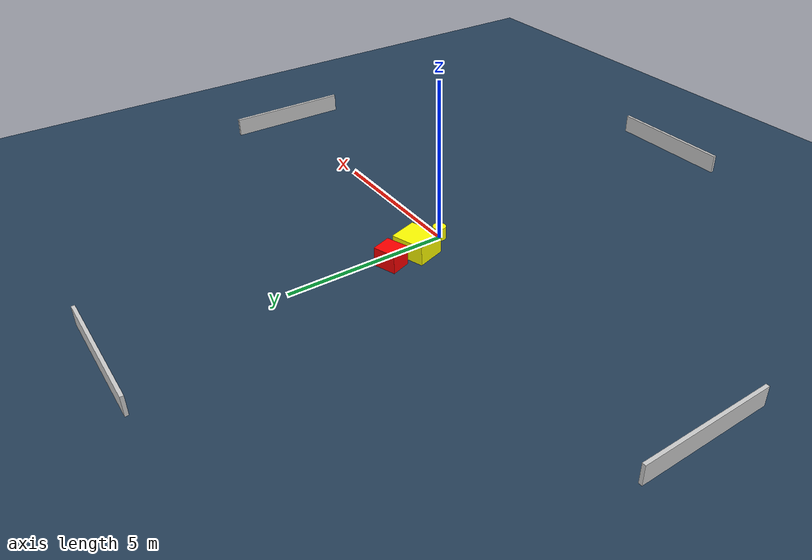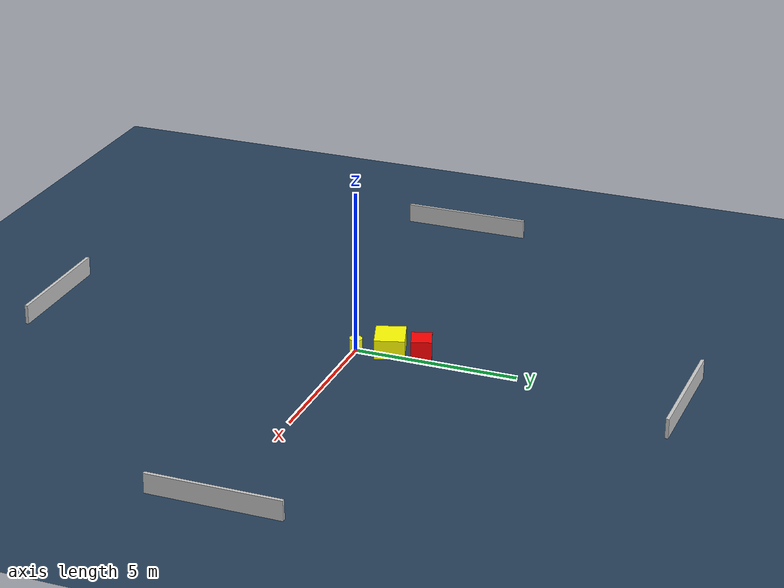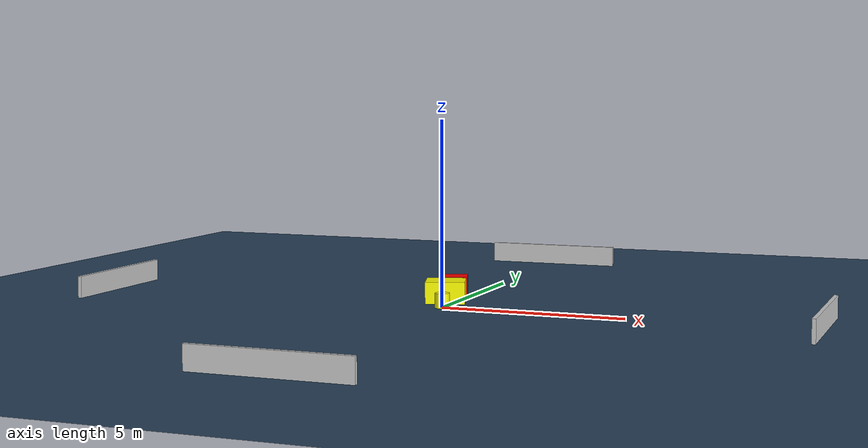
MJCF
<?xml version="1.0" ?>
<mujoco model="generated_environment">
  <option timestep="0.01" integrator="RK4" cone="elliptic"/>
  <default>
    <geom density="1"/>
  </default>
  <asset>
    <texture builtin="gradient" height="3072" name="skybox" rgb1="0.3 0.5 0.7" rgb2="0 0 0" type="skybox" width="512"/>
    <texture builtin="checker" height="300" name="groundplane" rgb1="0.2 0.3 0.4" rgb2="0.1 0.2 0.3" type="2d" width="300"/>
    <material name="groundplane" reflectance="0.2" texrepeat="5 5" texture="groundplane"/>
  </asset>
  <worldbody>
    <light dir="0 0 -1" directional="true" pos="0 0 1.5"/>
    <geom condim="3" friction="0.5 0.005 0.001" material="groundplane" name="floor" pos="0 0 0" size="0 0 0.05" type="plane"/>
    <body name="walls">
      <geom name="wall_1" condim="4" pos="-10.0 0.0 0.3" rgba="0.800000011920929 0.800000011920929 0.800000011920929 1.0" size="0.05 2.0 0.3" type="box"/>
      <geom name="wall_2" condim="4" pos="10.0 0.0 0.3" rgba="0.800000011920929 0.800000011920929 0.800000011920929 1.0" size="0.05 2.0 0.3" type="box"/>
      <geom name="wall_3" condim="4" pos="0.0 -10.0 0.3" rgba="0.800000011920929 0.800000011920929 0.800000011920929 1.0" size="2.0 0.05 0.3" type="box"/>
      <geom name="wall_4" condim="4" pos="0.0 10.0 0.3" rgba="0.800000011920929 0.800000011920929 0.800000011920929 1.0" size="2.0 0.05 0.3" type="box"/>
    </body>
    <body name="robot">
      <joint name="joint_x" type="slide" pos="0 0 0" axis="1 0 0"/>
      <joint name="joint_y" type="slide" pos="0 0 0" axis="0 1 0"/>
      <geom name="robot" type="cylinder" pos="0.0 0.0 0.2" size="0.2 0.2 0.0" mass="5.0" friction="1.0 0.005 0.0001" condim="4" rgba="1.0 1.0 0.0 1.0"/>
    </body>
    <body name="obstacle_1_movable">
      <geom name="obstacle_1_movable" condim="4" pos="-0.2754118556109363 0.9873988960405243 0.3" euler="0 0 287.6339040792065" friction="0.0 0.005 0.001" rgba="1.0 1.0 0.0 1.0" size="0.45878716807591513 0.5341217173348647 0.3" type="box" mass="0.1"/>
      <joint type="free"/>
    </body>
    <body name="obstacle_2_static">
      <geom name="obstacle_2_static" condim="4" pos="-0.37452974106585657 1.9398185055909696 0.3" euler="0 0 289.0644826202625" friction="0.0 0.005 0.001" rgba="1.0 0.0 0.0 1.0" size="0.3120323962044632 0.3575623154818855 0.3" type="box"/>
    </body>
  </worldbody>
  <actuator>
    <motor name="actuator_x" joint="joint_x" gear="1" ctrlrange="-1 1"/>
    <motor name="actuator_y" joint="joint_y" gear="1" ctrlrange="-1 1"/>
  </actuator>
</mujoco>
